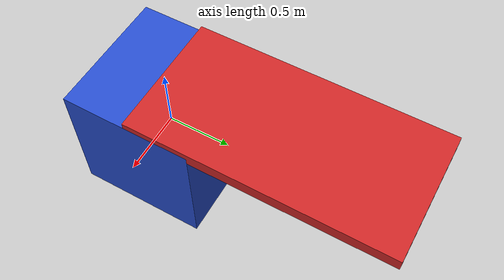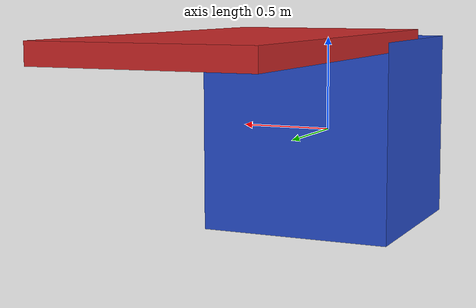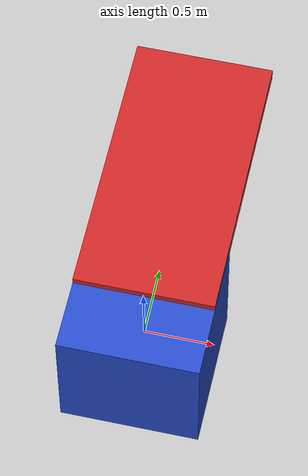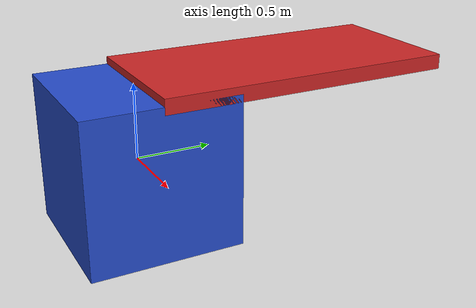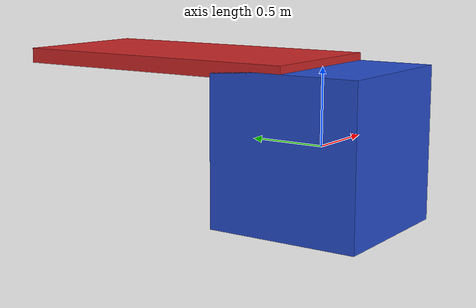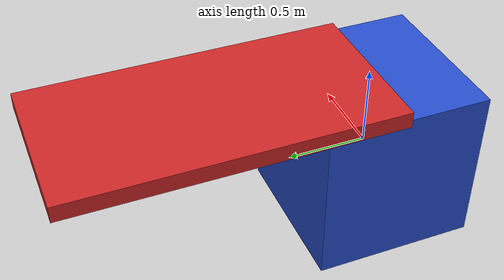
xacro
<?xml version="1.0"?>
<robot xmlns:xacro="http://www.ros.org/wiki/xacro" name="myrobot">
	<link name="base_link">
                <visual>
                <origin rpy="0 0 0" xyz="0 0 0" />
                <geometry>
                <box size="1 1 1"/>
                </geometry>
                <material name="blue"/>
                </visual>
	</link>

        <joint name="base_link__link01" type="revolute">
                <axis xyz="0 0 1"/>
                <limit effort = "1000.0" lower="-3.14" upper="3.14" velocity="0.5"/>
                <origin rpy="0 0 0" xyz="0 0 0.5"/>
                <parent link="base_link"/>
                <child link="link_01"/>
        </joint>

        <link name="link_01">
                <visual>
                <origin rpy="0 0 0" xyz="0 1 0" />
                <geometry>
                <box size="1 2 0.1"/>
                </geometry>
                <material name="red"/>
                </visual>
        </link>
</robot>
